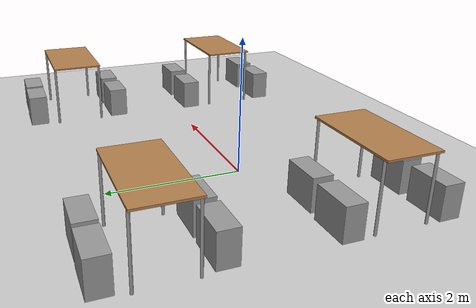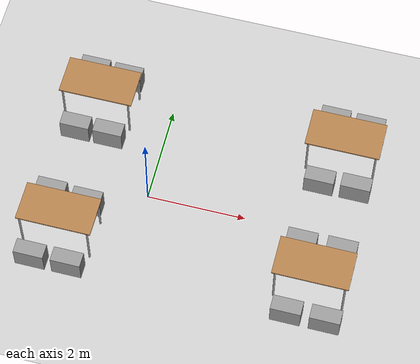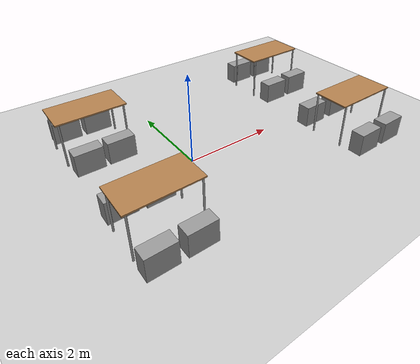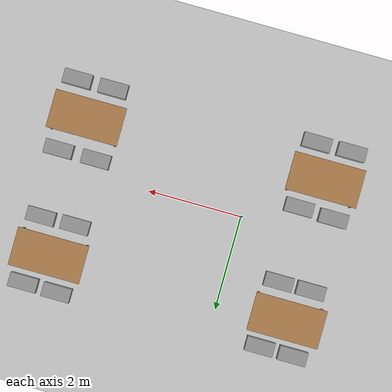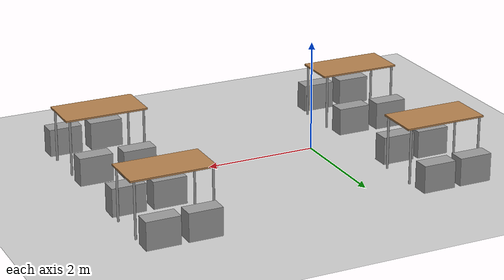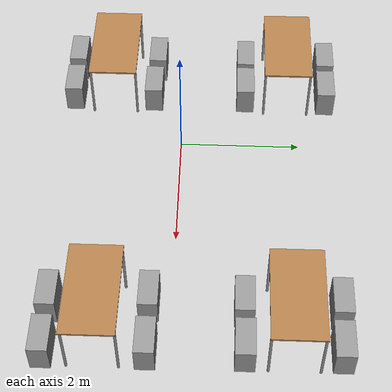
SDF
<sdf version="1.7">
 <world name="default">
  <model name="ground_plane">
   <static>1</static>
   <link name="link">
    <collision name="collision">
     <geometry><plane><normal>0 0 1</normal><size>100 100</size></plane></geometry>
     <surface><friction><ode><mu>100</mu><mu2>50</mu2></ode></friction></surface>
    </collision>
    <visual name="visual">
     <cast_shadows>0</cast_shadows>
     <geometry><plane><normal>0 0 1</normal><size>100 100</size></plane></geometry>
     <material>
      <script><uri>file://media/materials/scripts/gazebo.material</uri><name>Gazebo/Grey</name></script>
     </material>
    </visual>
   </link>
  </model>
  <model name="table">
   <static>1</static>
   <link name="link">
    <collision name="surface">
     <pose>0 0 1 0 -0 0</pose>
     <geometry><box><size>1.5 0.8 0.03</size></box></geometry>
     <surface><friction><ode><mu>0.6</mu><mu2>0.6</mu2></ode></friction></surface>
    </collision>
    <visual name="visual1">
     <pose>0 0 1 0 -0 0</pose>
     <geometry><box><size>1.5 0.8 0.03</size></box></geometry>
     <material>
      <script><uri>file://media/materials/scripts/gazebo.material</uri><name>Gazebo/Wood</name></script>
     </material>
    </visual>
    <collision name="front_left_leg">
     <pose>0.68 0.38 0.5 0 -0 0</pose>
     <geometry><cylinder><radius>0.02</radius><length>1</length></cylinder></geometry>
    </collision>
    <visual name="front_left_leg">
     <pose>0.68 0.38 0.5 0 -0 0</pose>
     <geometry><cylinder><radius>0.02</radius><length>1</length></cylinder></geometry>
     <material>
      <script><uri>file://media/materials/scripts/gazebo.material</uri><name>Gazebo/Grey</name></script>
     </material>
    </visual>
    <collision name="front_right_leg">
     <pose>0.68 -0.38 0.5 0 -0 0</pose>
     <geometry><cylinder><radius>0.02</radius><length>1</length></cylinder></geometry>
    </collision>
    <visual name="front_right_leg">
     <pose>0.68 -0.38 0.5 0 -0 0</pose>
     <geometry><cylinder><radius>0.02</radius><length>1</length></cylinder></geometry>
     <material>
      <script><uri>file://media/materials/scripts/gazebo.material</uri><name>Gazebo/Grey</name></script>
     </material>
    </visual>
    <collision name="back_right_leg">
     <pose>-0.68 -0.38 0.5 0 -0 0</pose>
     <geometry><cylinder><radius>0.02</radius><length>1</length></cylinder></geometry>
    </collision>
    <visual name="back_right_leg">
     <pose>-0.68 -0.38 0.5 0 -0 0</pose>
     <geometry><cylinder><radius>0.02</radius><length>1</length></cylinder></geometry>
     <material>
      <script><uri>file://media/materials/scripts/gazebo.material</uri><name>Gazebo/Grey</name></script>
     </material>
    </visual>
    <collision name="back_left_leg">
     <pose>-0.68 0.38 0.5 0 -0 0</pose>
     <geometry><cylinder><radius>0.02</radius><length>1</length></cylinder></geometry>
    </collision>
    <visual name="back_left_leg">
     <pose>-0.68 0.38 0.5 0 -0 0</pose>
     <geometry><cylinder><radius>0.02</radius><length>1</length></cylinder></geometry>
     <material>
      <script><uri>file://media/materials/scripts/gazebo.material</uri><name>Gazebo/Grey</name></script>
     </material>
    </visual>
   </link>
   <pose>-1.44943 1.78646 0 0 -0 0</pose>
  </model>
  <model name="table_0">
   <static>1</static>
   <link name="link">
    <collision name="surface">
     <pose>0 0 1 0 -0 0</pose>
     <geometry><box><size>1.5 0.8 0.03</size></box></geometry>
     <surface><friction><ode><mu>0.6</mu><mu2>0.6</mu2></ode></friction></surface>
    </collision>
    <visual name="visual1">
     <pose>0 0 1 0 -0 0</pose>
     <geometry><box><size>1.5 0.8 0.03</size></box></geometry>
     <material>
      <script><uri>file://media/materials/scripts/gazebo.material</uri><name>Gazebo/Wood</name></script>
     </material>
    </visual>
    <collision name="front_left_leg">
     <pose>0.68 0.38 0.5 0 -0 0</pose>
     <geometry><cylinder><radius>0.02</radius><length>1</length></cylinder></geometry>
    </collision>
    <visual name="front_left_leg">
     <pose>0.68 0.38 0.5 0 -0 0</pose>
     <geometry><cylinder><radius>0.02</radius><length>1</length></cylinder></geometry>
     <material>
      <script><uri>file://media/materials/scripts/gazebo.material</uri><name>Gazebo/Grey</name></script>
     </material>
    </visual>
    <collision name="front_right_leg">
     <pose>0.68 -0.38 0.5 0 -0 0</pose>
     <geometry><cylinder><radius>0.02</radius><length>1</length></cylinder></geometry>
    </collision>
    <visual name="front_right_leg">
     <pose>0.68 -0.38 0.5 0 -0 0</pose>
     <geometry><cylinder><radius>0.02</radius><length>1</length></cylinder></geometry>
     <material>
      <script><uri>file://media/materials/scripts/gazebo.material</uri><name>Gazebo/Grey</name></script>
     </material>
    </visual>
    <collision name="back_right_leg">
     <pose>-0.68 -0.38 0.5 0 -0 0</pose>
     <geometry><cylinder><radius>0.02</radius><length>1</length></cylinder></geometry>
    </collision>
    <visual name="back_right_leg">
     <pose>-0.68 -0.38 0.5 0 -0 0</pose>
     <geometry><cylinder><radius>0.02</radius><length>1</length></cylinder></geometry>
     <material>
      <script><uri>file://media/materials/scripts/gazebo.material</uri><name>Gazebo/Grey</name></script>
     </material>
    </visual>
    <collision name="back_left_leg">
     <pose>-0.68 0.38 0.5 0 -0 0</pose>
     <geometry><cylinder><radius>0.02</radius><length>1</length></cylinder></geometry>
    </collision>
    <visual name="back_left_leg">
     <pose>-0.68 0.38 0.5 0 -0 0</pose>
     <geometry><cylinder><radius>0.02</radius><length>1</length></cylinder></geometry>
     <material>
      <script><uri>file://media/materials/scripts/gazebo.material</uri><name>Gazebo/Grey</name></script>
     </material>
    </visual>
   </link>
   <pose>-1.43197 -1.18837 0 0 -0 0</pose>
  </model>
  <model name="table_3">
   <static>1</static>
   <link name="link">
    <collision name="surface">
     <pose>0 0 1 0 -0 0</pose>
     <geometry><box><size>1.5 0.8 0.03</size></box></geometry>
     <surface><friction><ode><mu>0.6</mu><mu2>0.6</mu2></ode></friction></surface>
    </collision>
    <visual name="visual1">
     <pose>0 0 1 0 -0 0</pose>
     <geometry><box><size>1.5 0.8 0.03</size></box></geometry>
     <material>
      <script><uri>file://media/materials/scripts/gazebo.material</uri><name>Gazebo/Wood</name></script>
     </material>
    </visual>
    <collision name="front_left_leg">
     <pose>0.68 0.38 0.5 0 -0 0</pose>
     <geometry><cylinder><radius>0.02</radius><length>1</length></cylinder></geometry>
    </collision>
    <visual name="front_left_leg">
     <pose>0.68 0.38 0.5 0 -0 0</pose>
     <geometry><cylinder><radius>0.02</radius><length>1</length></cylinder></geometry>
     <material>
      <script><uri>file://media/materials/scripts/gazebo.material</uri><name>Gazebo/Grey</name></script>
     </material>
    </visual>
    <collision name="front_right_leg">
     <pose>0.68 -0.38 0.5 0 -0 0</pose>
     <geometry><cylinder><radius>0.02</radius><length>1</length></cylinder></geometry>
    </collision>
    <visual name="front_right_leg">
     <pose>0.68 -0.38 0.5 0 -0 0</pose>
     <geometry><cylinder><radius>0.02</radius><length>1</length></cylinder></geometry>
     <material>
      <script><uri>file://media/materials/scripts/gazebo.material</uri><name>Gazebo/Grey</name></script>
     </material>
    </visual>
    <collision name="back_right_leg">
     <pose>-0.68 -0.38 0.5 0 -0 0</pose>
     <geometry><cylinder><radius>0.02</radius><length>1</length></cylinder></geometry>
    </collision>
    <visual name="back_right_leg">
     <pose>-0.68 -0.38 0.5 0 -0 0</pose>
     <geometry><cylinder><radius>0.02</radius><length>1</length></cylinder></geometry>
     <material>
      <script><uri>file://media/materials/scripts/gazebo.material</uri><name>Gazebo/Grey</name></script>
     </material>
    </visual>
    <collision name="back_left_leg">
     <pose>-0.68 0.38 0.5 0 -0 0</pose>
     <geometry><cylinder><radius>0.02</radius><length>1</length></cylinder></geometry>
    </collision>
    <visual name="back_left_leg">
     <pose>-0.68 0.38 0.5 0 -0 0</pose>
     <geometry><cylinder><radius>0.02</radius><length>1</length></cylinder></geometry>
     <material>
      <script><uri>file://media/materials/scripts/gazebo.material</uri><name>Gazebo/Grey</name></script>
     </material>
    </visual>
   </link>
   <pose>3.59201 1.81848 0 0 -0 0</pose>
  </model>
  <model name="table_4">
   <static>1</static>
   <link name="link">
    <collision name="surface">
     <pose>0 0 1 0 -0 0</pose>
     <geometry><box><size>1.5 0.8 0.03</size></box></geometry>
     <surface><friction><ode><mu>0.6</mu><mu2>0.6</mu2></ode></friction></surface>
    </collision>
    <visual name="visual1">
     <pose>0 0 1 0 -0 0</pose>
     <geometry><box><size>1.5 0.8 0.03</size></box></geometry>
     <material>
      <script><uri>file://media/materials/scripts/gazebo.material</uri><name>Gazebo/Wood</name></script>
     </material>
    </visual>
    <collision name="front_left_leg">
     <pose>0.68 0.38 0.5 0 -0 0</pose>
     <geometry><cylinder><radius>0.02</radius><length>1</length></cylinder></geometry>
    </collision>
    <visual name="front_left_leg">
     <pose>0.68 0.38 0.5 0 -0 0</pose>
     <geometry><cylinder><radius>0.02</radius><length>1</length></cylinder></geometry>
     <material>
      <script><uri>file://media/materials/scripts/gazebo.material</uri><name>Gazebo/Grey</name></script>
     </material>
    </visual>
    <collision name="front_right_leg">
     <pose>0.68 -0.38 0.5 0 -0 0</pose>
     <geometry><cylinder><radius>0.02</radius><length>1</length></cylinder></geometry>
    </collision>
    <visual name="front_right_leg">
     <pose>0.68 -0.38 0.5 0 -0 0</pose>
     <geometry><cylinder><radius>0.02</radius><length>1</length></cylinder></geometry>
     <material>
      <script><uri>file://media/materials/scripts/gazebo.material</uri><name>Gazebo/Grey</name></script>
     </material>
    </visual>
    <collision name="back_right_leg">
     <pose>-0.68 -0.38 0.5 0 -0 0</pose>
     <geometry><cylinder><radius>0.02</radius><length>1</length></cylinder></geometry>
    </collision>
    <visual name="back_right_leg">
     <pose>-0.68 -0.38 0.5 0 -0 0</pose>
     <geometry><cylinder><radius>0.02</radius><length>1</length></cylinder></geometry>
     <material>
      <script><uri>file://media/materials/scripts/gazebo.material</uri><name>Gazebo/Grey</name></script>
     </material>
    </visual>
    <collision name="back_left_leg">
     <pose>-0.68 0.38 0.5 0 -0 0</pose>
     <geometry><cylinder><radius>0.02</radius><length>1</length></cylinder></geometry>
    </collision>
    <visual name="back_left_leg">
     <pose>-0.68 0.38 0.5 0 -0 0</pose>
     <geometry><cylinder><radius>0.02</radius><length>1</length></cylinder></geometry>
     <material>
      <script><uri>file://media/materials/scripts/gazebo.material</uri><name>Gazebo/Grey</name></script>
     </material>
    </visual>
   </link>
   <pose>3.60676 -1.09378 0 0 -0 0</pose>
  </model>
  <model name="chair_clone_14">
   <link name="link">
    <inertial>
     <mass>1</mass>
     <inertia>
      <ixx>0.166667</ixx>
      <ixy>0</ixy>
      <ixz>0</ixz>
      <iyy>0.166667</iyy>
      <iyz>0</iyz>
      <izz>0.166667</izz>
     </inertia>
    </inertial>
    <visual name="visual">
     <geometry><box><size>0.6 0.3 0.5</size></box></geometry>
     <material>
      <script><name>Gazebo/Grey</name><uri>file://media/materials/scripts/gazebo.material</uri></script>
      <shader type="pixel"><normal_map>__default__</normal_map></shader>
      <ambient>0.3 0.3 0.3 1</ambient>
      <diffuse>0.7 0.7 0.7 1</diffuse>
      <specular>0.01 0.01 0.01 1</specular>
      <emissive>0.2 0.6 0 1</emissive>
     </material>
    </visual>
    <collision name="collision">
     <geometry><box><size>0.6 0.3 0.5</size></box></geometry>
     <surface>
      <friction>
       <ode><mu>1</mu><mu2>1</mu2><fdir1>0 0 0</fdir1><slip1>0</slip1><slip2>0</slip2></ode>
       <torsional>
        <coefficient>1</coefficient>
        <patch_radius>0</patch_radius>
        <surface_radius>0</surface_radius>
        <use_patch_radius>1</use_patch_radius>
        <ode><slip>0</slip></ode>
       </torsional>
      </friction>
      <bounce><restitution_coefficient>0</restitution_coefficient><threshold>1e+06</threshold></bounce>
      <contact>
       <collide_without_contact>0</collide_without_contact>
       <collide_without_contact_bitmask>1</collide_without_contact_bitmask>
       <collide_bitmask>1</collide_bitmask>
       <ode>
        <soft_cfm>0</soft_cfm>
        <soft_erp>0.2</soft_erp>
        <kp>1e+13</kp>
        <kd>1</kd>
        <max_vel>0.01</max_vel>
        <min_depth>0</min_depth>
       </ode>
       <bullet>
        <split_impulse>1</split_impulse>
        <split_impulse_penetration_threshold>-0.01</split_impulse_penetration_threshold>
        <soft_cfm>0</soft_cfm>
        <soft_erp>0.2</soft_erp>
        <kp>1e+13</kp>
        <kd>1</kd>
       </bullet>
      </contact>
     </surface>
    </collision>
   </link>
   <static>0</static>
   <pose>4.03397 -1.84002 0.244748 0 -0 0</pose>
  </model>
  <model name="chair_clone_15">
   <link name="link">
    <inertial>
     <mass>1</mass>
     <inertia>
      <ixx>0.166667</ixx>
      <ixy>0</ixy>
      <ixz>0</ixz>
      <iyy>0.166667</iyy>
      <iyz>0</iyz>
      <izz>0.166667</izz>
     </inertia>
    </inertial>
    <visual name="visual">
     <geometry><box><size>0.6 0.3 0.5</size></box></geometry>
     <material>
      <script><name>Gazebo/Grey</name><uri>file://media/materials/scripts/gazebo.material</uri></script>
      <shader type="pixel"><normal_map>__default__</normal_map></shader>
      <ambient>0.3 0.3 0.3 1</ambient>
      <diffuse>0.7 0.7 0.7 1</diffuse>
      <specular>0.01 0.01 0.01 1</specular>
      <emissive>0.2 0.6 0 1</emissive>
     </material>
    </visual>
    <collision name="collision">
     <geometry><box><size>0.6 0.3 0.5</size></box></geometry>
     <surface>
      <friction>
       <ode><mu>1</mu><mu2>1</mu2><fdir1>0 0 0</fdir1><slip1>0</slip1><slip2>0</slip2></ode>
       <torsional>
        <coefficient>1</coefficient>
        <patch_radius>0</patch_radius>
        <surface_radius>0</surface_radius>
        <use_patch_radius>1</use_patch_radius>
        <ode><slip>0</slip></ode>
       </torsional>
      </friction>
      <bounce><restitution_coefficient>0</restitution_coefficient><threshold>1e+06</threshold></bounce>
      <contact>
       <collide_without_contact>0</collide_without_contact>
       <collide_without_contact_bitmask>1</collide_without_contact_bitmask>
       <collide_bitmask>1</collide_bitmask>
       <ode>
        <soft_cfm>0</soft_cfm>
        <soft_erp>0.2</soft_erp>
        <kp>1e+13</kp>
        <kd>1</kd>
        <max_vel>0.01</max_vel>
        <min_depth>0</min_depth>
       </ode>
       <bullet>
        <split_impulse>1</split_impulse>
        <split_impulse_penetration_threshold>-0.01</split_impulse_penetration_threshold>
        <soft_cfm>0</soft_cfm>
        <soft_erp>0.2</soft_erp>
        <kp>1e+13</kp>
        <kd>1</kd>
       </bullet>
      </contact>
     </surface>
    </collision>
   </link>
   <static>0</static>
   <pose>3.26792 -1.83875 0.243552 0 -0 0</pose>
  </model>
  <model name="chair_clone_16">
   <link name="link">
    <inertial>
     <mass>1</mass>
     <inertia>
      <ixx>0.166667</ixx>
      <ixy>0</ixy>
      <ixz>0</ixz>
      <iyy>0.166667</iyy>
      <iyz>0</iyz>
      <izz>0.166667</izz>
     </inertia>
    </inertial>
    <visual name="visual">
     <geometry><box><size>0.6 0.3 0.5</size></box></geometry>
     <material>
      <script><name>Gazebo/Grey</name><uri>file://media/materials/scripts/gazebo.material</uri></script>
      <shader type="pixel"><normal_map>__default__</normal_map></shader>
      <ambient>0.3 0.3 0.3 1</ambient>
      <diffuse>0.7 0.7 0.7 1</diffuse>
      <specular>0.01 0.01 0.01 1</specular>
      <emissive>0.2 0.6 0 1</emissive>
     </material>
    </visual>
    <collision name="collision">
     <geometry><box><size>0.6 0.3 0.5</size></box></geometry>
     <surface>
      <friction>
       <ode><mu>1</mu><mu2>1</mu2><fdir1>0 0 0</fdir1><slip1>0</slip1><slip2>0</slip2></ode>
       <torsional>
        <coefficient>1</coefficient>
        <patch_radius>0</patch_radius>
        <surface_radius>0</surface_radius>
        <use_patch_radius>1</use_patch_radius>
        <ode><slip>0</slip></ode>
       </torsional>
      </friction>
      <bounce><restitution_coefficient>0</restitution_coefficient><threshold>1e+06</threshold></bounce>
      <contact>
       <collide_without_contact>0</collide_without_contact>
       <collide_without_contact_bitmask>1</collide_without_contact_bitmask>
       <collide_bitmask>1</collide_bitmask>
       <ode>
        <soft_cfm>0</soft_cfm>
        <soft_erp>0.2</soft_erp>
        <kp>1e+13</kp>
        <kd>1</kd>
        <max_vel>0.01</max_vel>
        <min_depth>0</min_depth>
       </ode>
       <bullet>
        <split_impulse>1</split_impulse>
        <split_impulse_penetration_threshold>-0.01</split_impulse_penetration_threshold>
        <soft_cfm>0</soft_cfm>
        <soft_erp>0.2</soft_erp>
        <kp>1e+13</kp>
        <kd>1</kd>
       </bullet>
      </contact>
     </surface>
    </collision>
   </link>
   <static>0</static>
   <pose>4.01856 -0.337506 0.246213 0 -0 0</pose>
  </model>
  <model name="chair_clone_17">
   <link name="link">
    <inertial>
     <mass>1</mass>
     <inertia>
      <ixx>0.166667</ixx>
      <ixy>0</ixy>
      <ixz>0</ixz>
      <iyy>0.166667</iyy>
      <iyz>0</iyz>
      <izz>0.166667</izz>
     </inertia>
    </inertial>
    <visual name="visual">
     <geometry><box><size>0.6 0.3 0.5</size></box></geometry>
     <material>
      <script><name>Gazebo/Grey</name><uri>file://media/materials/scripts/gazebo.material</uri></script>
      <shader type="pixel"><normal_map>__default__</normal_map></shader>
      <ambient>0.3 0.3 0.3 1</ambient>
      <diffuse>0.7 0.7 0.7 1</diffuse>
      <specular>0.01 0.01 0.01 1</specular>
      <emissive>0.2 0.6 0 1</emissive>
     </material>
    </visual>
    <collision name="collision">
     <geometry><box><size>0.6 0.3 0.5</size></box></geometry>
     <surface>
      <friction>
       <ode><mu>1</mu><mu2>1</mu2><fdir1>0 0 0</fdir1><slip1>0</slip1><slip2>0</slip2></ode>
       <torsional>
        <coefficient>1</coefficient>
        <patch_radius>0</patch_radius>
        <surface_radius>0</surface_radius>
        <use_patch_radius>1</use_patch_radius>
        <ode><slip>0</slip></ode>
       </torsional>
      </friction>
      <bounce><restitution_coefficient>0</restitution_coefficient><threshold>1e+06</threshold></bounce>
      <contact>
       <collide_without_contact>0</collide_without_contact>
       <collide_without_contact_bitmask>1</collide_without_contact_bitmask>
       <collide_bitmask>1</collide_bitmask>
       <ode>
        <soft_cfm>0</soft_cfm>
        <soft_erp>0.2</soft_erp>
        <kp>1e+13</kp>
        <kd>1</kd>
        <max_vel>0.01</max_vel>
        <min_depth>0</min_depth>
       </ode>
       <bullet>
        <split_impulse>1</split_impulse>
        <split_impulse_penetration_threshold>-0.01</split_impulse_penetration_threshold>
        <soft_cfm>0</soft_cfm>
        <soft_erp>0.2</soft_erp>
        <kp>1e+13</kp>
        <kd>1</kd>
       </bullet>
      </contact>
     </surface>
    </collision>
   </link>
   <static>0</static>
   <pose>3.22057 -0.336977 0.230774 0 -0 0</pose>
  </model>
  <model name="chair_clone_18">
   <link name="link">
    <inertial>
     <mass>1</mass>
     <inertia>
      <ixx>0.166667</ixx>
      <ixy>0</ixy>
      <ixz>0</ixz>
      <iyy>0.166667</iyy>
      <iyz>0</iyz>
      <izz>0.166667</izz>
     </inertia>
    </inertial>
    <visual name="visual">
     <geometry><box><size>0.6 0.3 0.5</size></box></geometry>
     <material>
      <script><name>Gazebo/Grey</name><uri>file://media/materials/scripts/gazebo.material</uri></script>
      <shader type="pixel"><normal_map>__default__</normal_map></shader>
      <ambient>0.3 0.3 0.3 1</ambient>
      <diffuse>0.7 0.7 0.7 1</diffuse>
      <specular>0.01 0.01 0.01 1</specular>
      <emissive>0.2 0.6 0 1</emissive>
     </material>
    </visual>
    <collision name="collision">
     <geometry><box><size>0.6 0.3 0.5</size></box></geometry>
     <surface>
      <friction>
       <ode><mu>1</mu><mu2>1</mu2><fdir1>0 0 0</fdir1><slip1>0</slip1><slip2>0</slip2></ode>
       <torsional>
        <coefficient>1</coefficient>
        <patch_radius>0</patch_radius>
        <surface_radius>0</surface_radius>
        <use_patch_radius>1</use_patch_radius>
        <ode><slip>0</slip></ode>
       </torsional>
      </friction>
      <bounce><restitution_coefficient>0</restitution_coefficient><threshold>1e+06</threshold></bounce>
      <contact>
       <collide_without_contact>0</collide_without_contact>
       <collide_without_contact_bitmask>1</collide_without_contact_bitmask>
       <collide_bitmask>1</collide_bitmask>
       <ode>
        <soft_cfm>0</soft_cfm>
        <soft_erp>0.2</soft_erp>
        <kp>1e+13</kp>
        <kd>1</kd>
        <max_vel>0.01</max_vel>
        <min_depth>0</min_depth>
       </ode>
       <bullet>
        <split_impulse>1</split_impulse>
        <split_impulse_penetration_threshold>-0.01</split_impulse_penetration_threshold>
        <soft_cfm>0</soft_cfm>
        <soft_erp>0.2</soft_erp>
        <kp>1e+13</kp>
        <kd>1</kd>
       </bullet>
      </contact>
     </surface>
    </collision>
   </link>
   <static>0</static>
   <pose>-1.08844 -1.90508 0.242543 0 -0 0</pose>
  </model>
  <model name="chair_clone_19">
   <link name="link">
    <inertial>
     <mass>1</mass>
     <inertia>
      <ixx>0.166667</ixx>
      <ixy>0</ixy>
      <ixz>0</ixz>
      <iyy>0.166667</iyy>
      <iyz>0</iyz>
      <izz>0.166667</izz>
     </inertia>
    </inertial>
    <visual name="visual">
     <geometry><box><size>0.6 0.3 0.5</size></box></geometry>
     <material>
      <script><name>Gazebo/Grey</name><uri>file://media/materials/scripts/gazebo.material</uri></script>
      <shader type="pixel"><normal_map>__default__</normal_map></shader>
      <ambient>0.3 0.3 0.3 1</ambient>
      <diffuse>0.7 0.7 0.7 1</diffuse>
      <specular>0.01 0.01 0.01 1</specular>
      <emissive>0.2 0.6 0 1</emissive>
     </material>
    </visual>
    <collision name="collision">
     <geometry><box><size>0.6 0.3 0.5</size></box></geometry>
     <surface>
      <friction>
       <ode><mu>1</mu><mu2>1</mu2><fdir1>0 0 0</fdir1><slip1>0</slip1><slip2>0</slip2></ode>
       <torsional>
        <coefficient>1</coefficient>
        <patch_radius>0</patch_radius>
        <surface_radius>0</surface_radius>
        <use_patch_radius>1</use_patch_radius>
        <ode><slip>0</slip></ode>
       </torsional>
      </friction>
      <bounce><restitution_coefficient>0</restitution_coefficient><threshold>1e+06</threshold></bounce>
      <contact>
       <collide_without_contact>0</collide_without_contact>
       <collide_without_contact_bitmask>1</collide_without_contact_bitmask>
       <collide_bitmask>1</collide_bitmask>
       <ode>
        <soft_cfm>0</soft_cfm>
        <soft_erp>0.2</soft_erp>
        <kp>1e+13</kp>
        <kd>1</kd>
        <max_vel>0.01</max_vel>
        <min_depth>0</min_depth>
       </ode>
       <bullet>
        <split_impulse>1</split_impulse>
        <split_impulse_penetration_threshold>-0.01</split_impulse_penetration_threshold>
        <soft_cfm>0</soft_cfm>
        <soft_erp>0.2</soft_erp>
        <kp>1e+13</kp>
        <kd>1</kd>
       </bullet>
      </contact>
     </surface>
    </collision>
   </link>
   <static>0</static>
   <pose>-1.83556 -1.90878 0.242242 0 -0 0</pose>
  </model>
  <model name="chair_clone_20">
   <link name="link">
    <inertial>
     <mass>1</mass>
     <inertia>
      <ixx>0.166667</ixx>
      <ixy>0</ixy>
      <ixz>0</ixz>
      <iyy>0.166667</iyy>
      <iyz>0</iyz>
      <izz>0.166667</izz>
     </inertia>
    </inertial>
    <visual name="visual">
     <geometry><box><size>0.6 0.3 0.5</size></box></geometry>
     <material>
      <script><name>Gazebo/Grey</name><uri>file://media/materials/scripts/gazebo.material</uri></script>
      <shader type="pixel"><normal_map>__default__</normal_map></shader>
      <ambient>0.3 0.3 0.3 1</ambient>
      <diffuse>0.7 0.7 0.7 1</diffuse>
      <specular>0.01 0.01 0.01 1</specular>
      <emissive>0.2 0.6 0 1</emissive>
     </material>
    </visual>
    <collision name="collision">
     <geometry><box><size>0.6 0.3 0.5</size></box></geometry>
     <surface>
      <friction>
       <ode><mu>1</mu><mu2>1</mu2><fdir1>0 0 0</fdir1><slip1>0</slip1><slip2>0</slip2></ode>
       <torsional>
        <coefficient>1</coefficient>
        <patch_radius>0</patch_radius>
        <surface_radius>0</surface_radius>
        <use_patch_radius>1</use_patch_radius>
        <ode><slip>0</slip></ode>
       </torsional>
      </friction>
      <bounce><restitution_coefficient>0</restitution_coefficient><threshold>1e+06</threshold></bounce>
      <contact>
       <collide_without_contact>0</collide_without_contact>
       <collide_without_contact_bitmask>1</collide_without_contact_bitmask>
       <collide_bitmask>1</collide_bitmask>
       <ode>
        <soft_cfm>0</soft_cfm>
        <soft_erp>0.2</soft_erp>
        <kp>1e+13</kp>
        <kd>1</kd>
        <max_vel>0.01</max_vel>
        <min_depth>0</min_depth>
       </ode>
       <bullet>
        <split_impulse>1</split_impulse>
        <split_impulse_penetration_threshold>-0.01</split_impulse_penetration_threshold>
        <soft_cfm>0</soft_cfm>
        <soft_erp>0.2</soft_erp>
        <kp>1e+13</kp>
        <kd>1</kd>
       </bullet>
      </contact>
     </surface>
    </collision>
   </link>
   <static>0</static>
   <pose>-1.09452 -0.516383 0.239199 0 -0 0</pose>
  </model>
  <model name="chair_clone_21">
   <link name="link">
    <inertial>
     <mass>1</mass>
     <inertia>
      <ixx>0.166667</ixx>
      <ixy>0</ixy>
      <ixz>0</ixz>
      <iyy>0.166667</iyy>
      <iyz>0</iyz>
      <izz>0.166667</izz>
     </inertia>
    </inertial>
    <visual name="visual">
     <geometry><box><size>0.6 0.3 0.5</size></box></geometry>
     <material>
      <script><name>Gazebo/Grey</name><uri>file://media/materials/scripts/gazebo.material</uri></script>
      <shader type="pixel"><normal_map>__default__</normal_map></shader>
      <ambient>0.3 0.3 0.3 1</ambient>
      <diffuse>0.7 0.7 0.7 1</diffuse>
      <specular>0.01 0.01 0.01 1</specular>
      <emissive>0.2 0.6 0 1</emissive>
     </material>
    </visual>
    <collision name="collision">
     <geometry><box><size>0.6 0.3 0.5</size></box></geometry>
     <surface>
      <friction>
       <ode><mu>1</mu><mu2>1</mu2><fdir1>0 0 0</fdir1><slip1>0</slip1><slip2>0</slip2></ode>
       <torsional>
        <coefficient>1</coefficient>
        <patch_radius>0</patch_radius>
        <surface_radius>0</surface_radius>
        <use_patch_radius>1</use_patch_radius>
        <ode><slip>0</slip></ode>
       </torsional>
      </friction>
      <bounce><restitution_coefficient>0</restitution_coefficient><threshold>1e+06</threshold></bounce>
      <contact>
       <collide_without_contact>0</collide_without_contact>
       <collide_without_contact_bitmask>1</collide_without_contact_bitmask>
       <collide_bitmask>1</collide_bitmask>
       <ode>
        <soft_cfm>0</soft_cfm>
        <soft_erp>0.2</soft_erp>
        <kp>1e+13</kp>
        <kd>1</kd>
        <max_vel>0.01</max_vel>
        <min_depth>0</min_depth>
       </ode>
       <bullet>
        <split_impulse>1</split_impulse>
        <split_impulse_penetration_threshold>-0.01</split_impulse_penetration_threshold>
        <soft_cfm>0</soft_cfm>
        <soft_erp>0.2</soft_erp>
        <kp>1e+13</kp>
        <kd>1</kd>
       </bullet>
      </contact>
     </surface>
    </collision>
   </link>
   <static>0</static>
   <pose>-1.83815 -0.482425 0.246423 0 -0 0</pose>
  </model>
  <model name="chair_clone_22">
   <link name="link">
    <inertial>
     <mass>1</mass>
     <inertia>
      <ixx>0.166667</ixx>
      <ixy>0</ixy>
      <ixz>0</ixz>
      <iyy>0.166667</iyy>
      <iyz>0</iyz>
      <izz>0.166667</izz>
     </inertia>
    </inertial>
    <visual name="visual">
     <geometry><box><size>0.6 0.3 0.5</size></box></geometry>
     <material>
      <script><name>Gazebo/Grey</name><uri>file://media/materials/scripts/gazebo.material</uri></script>
      <shader type="pixel"><normal_map>__default__</normal_map></shader>
      <ambient>0.3 0.3 0.3 1</ambient>
      <diffuse>0.7 0.7 0.7 1</diffuse>
      <specular>0.01 0.01 0.01 1</specular>
      <emissive>0.2 0.6 0 1</emissive>
     </material>
    </visual>
    <collision name="collision">
     <geometry><box><size>0.6 0.3 0.5</size></box></geometry>
     <surface>
      <friction>
       <ode><mu>1</mu><mu2>1</mu2><fdir1>0 0 0</fdir1><slip1>0</slip1><slip2>0</slip2></ode>
       <torsional>
        <coefficient>1</coefficient>
        <patch_radius>0</patch_radius>
        <surface_radius>0</surface_radius>
        <use_patch_radius>1</use_patch_radius>
        <ode><slip>0</slip></ode>
       </torsional>
      </friction>
      <bounce><restitution_coefficient>0</restitution_coefficient><threshold>1e+06</threshold></bounce>
      <contact>
       <collide_without_contact>0</collide_without_contact>
       <collide_without_contact_bitmask>1</collide_without_contact_bitmask>
       <collide_bitmask>1</collide_bitmask>
       <ode>
        <soft_cfm>0</soft_cfm>
        <soft_erp>0.2</soft_erp>
        <kp>1e+13</kp>
        <kd>1</kd>
        <max_vel>0.01</max_vel>
        <min_depth>0</min_depth>
       </ode>
       <bullet>
        <split_impulse>1</split_impulse>
        <split_impulse_penetration_threshold>-0.01</split_impulse_penetration_threshold>
        <soft_cfm>0</soft_cfm>
        <soft_erp>0.2</soft_erp>
        <kp>1e+13</kp>
        <kd>1</kd>
       </bullet>
      </contact>
     </surface>
    </collision>
   </link>
   <static>0</static>
   <pose>3.99871 1.10093 0.247885 0 -0 0</pose>
  </model>
  <model name="chair_clone_23">
   <link name="link">
    <inertial>
     <mass>1</mass>
     <inertia>
      <ixx>0.166667</ixx>
      <ixy>0</ixy>
      <ixz>0</ixz>
      <iyy>0.166667</iyy>
      <iyz>0</iyz>
      <izz>0.166667</izz>
     </inertia>
    </inertial>
    <visual name="visual">
     <geometry><box><size>0.6 0.3 0.5</size></box></geometry>
     <material>
      <script><name>Gazebo/Grey</name><uri>file://media/materials/scripts/gazebo.material</uri></script>
      <shader type="pixel"><normal_map>__default__</normal_map></shader>
      <ambient>0.3 0.3 0.3 1</ambient>
      <diffuse>0.7 0.7 0.7 1</diffuse>
      <specular>0.01 0.01 0.01 1</specular>
      <emissive>0.2 0.6 0 1</emissive>
     </material>
    </visual>
    <collision name="collision">
     <geometry><box><size>0.6 0.3 0.5</size></box></geometry>
     <surface>
      <friction>
       <ode><mu>1</mu><mu2>1</mu2><fdir1>0 0 0</fdir1><slip1>0</slip1><slip2>0</slip2></ode>
       <torsional>
        <coefficient>1</coefficient>
        <patch_radius>0</patch_radius>
        <surface_radius>0</surface_radius>
        <use_patch_radius>1</use_patch_radius>
        <ode><slip>0</slip></ode>
       </torsional>
      </friction>
      <bounce><restitution_coefficient>0</restitution_coefficient><threshold>1e+06</threshold></bounce>
      <contact>
       <collide_without_contact>0</collide_without_contact>
       <collide_without_contact_bitmask>1</collide_without_contact_bitmask>
       <collide_bitmask>1</collide_bitmask>
       <ode>
        <soft_cfm>0</soft_cfm>
        <soft_erp>0.2</soft_erp>
        <kp>1e+13</kp>
        <kd>1</kd>
        <max_vel>0.01</max_vel>
        <min_depth>0</min_depth>
       </ode>
       <bullet>
        <split_impulse>1</split_impulse>
        <split_impulse_penetration_threshold>-0.01</split_impulse_penetration_threshold>
        <soft_cfm>0</soft_cfm>
        <soft_erp>0.2</soft_erp>
        <kp>1e+13</kp>
        <kd>1</kd>
       </bullet>
      </contact>
     </surface>
    </collision>
   </link>
   <static>0</static>
   <pose>3.26438 1.09176 0.230864 0 -0 0</pose>
  </model>
  <model name="chair_clone_24">
   <link name="link">
    <inertial>
     <mass>1</mass>
     <inertia>
      <ixx>0.166667</ixx>
      <ixy>0</ixy>
      <ixz>0</ixz>
      <iyy>0.166667</iyy>
      <iyz>0</iyz>
      <izz>0.166667</izz>
     </inertia>
    </inertial>
    <visual name="visual">
     <geometry><box><size>0.6 0.3 0.5</size></box></geometry>
     <material>
      <script><name>Gazebo/Grey</name><uri>file://media/materials/scripts/gazebo.material</uri></script>
      <shader type="pixel"><normal_map>__default__</normal_map></shader>
      <ambient>0.3 0.3 0.3 1</ambient>
      <diffuse>0.7 0.7 0.7 1</diffuse>
      <specular>0.01 0.01 0.01 1</specular>
      <emissive>0.2 0.6 0 1</emissive>
     </material>
    </visual>
    <collision name="collision">
     <geometry><box><size>0.6 0.3 0.5</size></box></geometry>
     <surface>
      <friction>
       <ode><mu>1</mu><mu2>1</mu2><fdir1>0 0 0</fdir1><slip1>0</slip1><slip2>0</slip2></ode>
       <torsional>
        <coefficient>1</coefficient>
        <patch_radius>0</patch_radius>
        <surface_radius>0</surface_radius>
        <use_patch_radius>1</use_patch_radius>
        <ode><slip>0</slip></ode>
       </torsional>
      </friction>
      <bounce><restitution_coefficient>0</restitution_coefficient><threshold>1e+06</threshold></bounce>
      <contact>
       <collide_without_contact>0</collide_without_contact>
       <collide_without_contact_bitmask>1</collide_without_contact_bitmask>
       <collide_bitmask>1</collide_bitmask>
       <ode>
        <soft_cfm>0</soft_cfm>
        <soft_erp>0.2</soft_erp>
        <kp>1e+13</kp>
        <kd>1</kd>
        <max_vel>0.01</max_vel>
        <min_depth>0</min_depth>
       </ode>
       <bullet>
        <split_impulse>1</split_impulse>
        <split_impulse_penetration_threshold>-0.01</split_impulse_penetration_threshold>
        <soft_cfm>0</soft_cfm>
        <soft_erp>0.2</soft_erp>
        <kp>1e+13</kp>
        <kd>1</kd>
       </bullet>
      </contact>
     </surface>
    </collision>
   </link>
   <static>0</static>
   <pose>3.98228 2.51931 0.235986 0 -0 0</pose>
  </model>
  <model name="chair_clone_25">
   <link name="link">
    <inertial>
     <mass>1</mass>
     <inertia>
      <ixx>0.166667</ixx>
      <ixy>0</ixy>
      <ixz>0</ixz>
      <iyy>0.166667</iyy>
      <iyz>0</iyz>
      <izz>0.166667</izz>
     </inertia>
    </inertial>
    <visual name="visual">
     <geometry><box><size>0.6 0.3 0.5</size></box></geometry>
     <material>
      <script><name>Gazebo/Grey</name><uri>file://media/materials/scripts/gazebo.material</uri></script>
      <shader type="pixel"><normal_map>__default__</normal_map></shader>
      <ambient>0.3 0.3 0.3 1</ambient>
      <diffuse>0.7 0.7 0.7 1</diffuse>
      <specular>0.01 0.01 0.01 1</specular>
      <emissive>0.2 0.6 0 1</emissive>
     </material>
    </visual>
    <collision name="collision">
     <geometry><box><size>0.6 0.3 0.5</size></box></geometry>
     <surface>
      <friction>
       <ode><mu>1</mu><mu2>1</mu2><fdir1>0 0 0</fdir1><slip1>0</slip1><slip2>0</slip2></ode>
       <torsional>
        <coefficient>1</coefficient>
        <patch_radius>0</patch_radius>
        <surface_radius>0</surface_radius>
        <use_patch_radius>1</use_patch_radius>
        <ode><slip>0</slip></ode>
       </torsional>
      </friction>
      <bounce><restitution_coefficient>0</restitution_coefficient><threshold>1e+06</threshold></bounce>
      <contact>
       <collide_without_contact>0</collide_without_contact>
       <collide_without_contact_bitmask>1</collide_without_contact_bitmask>
       <collide_bitmask>1</collide_bitmask>
       <ode>
        <soft_cfm>0</soft_cfm>
        <soft_erp>0.2</soft_erp>
        <kp>1e+13</kp>
        <kd>1</kd>
        <max_vel>0.01</max_vel>
        <min_depth>0</min_depth>
       </ode>
       <bullet>
        <split_impulse>1</split_impulse>
        <split_impulse_penetration_threshold>-0.01</split_impulse_penetration_threshold>
        <soft_cfm>0</soft_cfm>
        <soft_erp>0.2</soft_erp>
        <kp>1e+13</kp>
        <kd>1</kd>
       </bullet>
      </contact>
     </surface>
    </collision>
   </link>
   <static>0</static>
   <pose>3.26273 2.53263 0.248443 0 -0 0</pose>
  </model>
  <model name="chair_clone_26">
   <link name="link">
    <inertial>
     <mass>1</mass>
     <inertia>
      <ixx>0.166667</ixx>
      <ixy>0</ixy>
      <ixz>0</ixz>
      <iyy>0.166667</iyy>
      <iyz>0</iyz>
      <izz>0.166667</izz>
     </inertia>
    </inertial>
    <visual name="visual">
     <geometry><box><size>0.6 0.3 0.5</size></box></geometry>
     <material>
      <script><name>Gazebo/Grey</name><uri>file://media/materials/scripts/gazebo.material</uri></script>
      <shader type="pixel"><normal_map>__default__</normal_map></shader>
      <ambient>0.3 0.3 0.3 1</ambient>
      <diffuse>0.7 0.7 0.7 1</diffuse>
      <specular>0.01 0.01 0.01 1</specular>
      <emissive>0.2 0.6 0 1</emissive>
     </material>
    </visual>
    <collision name="collision">
     <geometry><box><size>0.6 0.3 0.5</size></box></geometry>
     <surface>
      <friction>
       <ode><mu>1</mu><mu2>1</mu2><fdir1>0 0 0</fdir1><slip1>0</slip1><slip2>0</slip2></ode>
       <torsional>
        <coefficient>1</coefficient>
        <patch_radius>0</patch_radius>
        <surface_radius>0</surface_radius>
        <use_patch_radius>1</use_patch_radius>
        <ode><slip>0</slip></ode>
       </torsional>
      </friction>
      <bounce><restitution_coefficient>0</restitution_coefficient><threshold>1e+06</threshold></bounce>
      <contact>
       <collide_without_contact>0</collide_without_contact>
       <collide_without_contact_bitmask>1</collide_without_contact_bitmask>
       <collide_bitmask>1</collide_bitmask>
       <ode>
        <soft_cfm>0</soft_cfm>
        <soft_erp>0.2</soft_erp>
        <kp>1e+13</kp>
        <kd>1</kd>
        <max_vel>0.01</max_vel>
        <min_depth>0</min_depth>
       </ode>
       <bullet>
        <split_impulse>1</split_impulse>
        <split_impulse_penetration_threshold>-0.01</split_impulse_penetration_threshold>
        <soft_cfm>0</soft_cfm>
        <soft_erp>0.2</soft_erp>
        <kp>1e+13</kp>
        <kd>1</kd>
       </bullet>
      </contact>
     </surface>
    </collision>
   </link>
   <static>0</static>
   <pose>-1.1031 1.08266 0.247911 0 -0 0</pose>
  </model>
  <model name="chair_clone_27">
   <link name="link">
    <inertial>
     <mass>1</mass>
     <inertia>
      <ixx>0.166667</ixx>
      <ixy>0</ixy>
      <ixz>0</ixz>
      <iyy>0.166667</iyy>
      <iyz>0</iyz>
      <izz>0.166667</izz>
     </inertia>
    </inertial>
    <visual name="visual">
     <geometry><box><size>0.6 0.3 0.5</size></box></geometry>
     <material>
      <script><name>Gazebo/Grey</name><uri>file://media/materials/scripts/gazebo.material</uri></script>
      <shader type="pixel"><normal_map>__default__</normal_map></shader>
      <ambient>0.3 0.3 0.3 1</ambient>
      <diffuse>0.7 0.7 0.7 1</diffuse>
      <specular>0.01 0.01 0.01 1</specular>
      <emissive>0.2 0.6 0 1</emissive>
     </material>
    </visual>
    <collision name="collision">
     <geometry><box><size>0.6 0.3 0.5</size></box></geometry>
     <surface>
      <friction>
       <ode><mu>1</mu><mu2>1</mu2><fdir1>0 0 0</fdir1><slip1>0</slip1><slip2>0</slip2></ode>
       <torsional>
        <coefficient>1</coefficient>
        <patch_radius>0</patch_radius>
        <surface_radius>0</surface_radius>
        <use_patch_radius>1</use_patch_radius>
        <ode><slip>0</slip></ode>
       </torsional>
      </friction>
      <bounce><restitution_coefficient>0</restitution_coefficient><threshold>1e+06</threshold></bounce>
      <contact>
       <collide_without_contact>0</collide_without_contact>
       <collide_without_contact_bitmask>1</collide_without_contact_bitmask>
       <collide_bitmask>1</collide_bitmask>
       <ode>
        <soft_cfm>0</soft_cfm>
        <soft_erp>0.2</soft_erp>
        <kp>1e+13</kp>
        <kd>1</kd>
        <max_vel>0.01</max_vel>
        <min_depth>0</min_depth>
       </ode>
       <bullet>
        <split_impulse>1</split_impulse>
        <split_impulse_penetration_threshold>-0.01</split_impulse_penetration_threshold>
        <soft_cfm>0</soft_cfm>
        <soft_erp>0.2</soft_erp>
        <kp>1e+13</kp>
        <kd>1</kd>
       </bullet>
      </contact>
     </surface>
    </collision>
   </link>
   <static>0</static>
   <pose>-1.79246 1.08319 0.245224 0 -0 0</pose>
  </model>
  <model name="chair_clone_28">
   <link name="link">
    <inertial>
     <mass>1</mass>
     <inertia>
      <ixx>0.166667</ixx>
      <ixy>0</ixy>
      <ixz>0</ixz>
      <iyy>0.166667</iyy>
      <iyz>0</iyz>
      <izz>0.166667</izz>
     </inertia>
    </inertial>
    <visual name="visual">
     <geometry><box><size>0.6 0.3 0.5</size></box></geometry>
     <material>
      <script><name>Gazebo/Grey</name><uri>file://media/materials/scripts/gazebo.material</uri></script>
      <shader type="pixel"><normal_map>__default__</normal_map></shader>
      <ambient>0.3 0.3 0.3 1</ambient>
      <diffuse>0.7 0.7 0.7 1</diffuse>
      <specular>0.01 0.01 0.01 1</specular>
      <emissive>0.2 0.6 0 1</emissive>
     </material>
    </visual>
    <collision name="collision">
     <geometry><box><size>0.6 0.3 0.5</size></box></geometry>
     <surface>
      <friction>
       <ode><mu>1</mu><mu2>1</mu2><fdir1>0 0 0</fdir1><slip1>0</slip1><slip2>0</slip2></ode>
       <torsional>
        <coefficient>1</coefficient>
        <patch_radius>0</patch_radius>
        <surface_radius>0</surface_radius>
        <use_patch_radius>1</use_patch_radius>
        <ode><slip>0</slip></ode>
       </torsional>
      </friction>
      <bounce><restitution_coefficient>0</restitution_coefficient><threshold>1e+06</threshold></bounce>
      <contact>
       <collide_without_contact>0</collide_without_contact>
       <collide_without_contact_bitmask>1</collide_without_contact_bitmask>
       <collide_bitmask>1</collide_bitmask>
       <ode>
        <soft_cfm>0</soft_cfm>
        <soft_erp>0.2</soft_erp>
        <kp>1e+13</kp>
        <kd>1</kd>
        <max_vel>0.01</max_vel>
        <min_depth>0</min_depth>
       </ode>
       <bullet>
        <split_impulse>1</split_impulse>
        <split_impulse_penetration_threshold>-0.01</split_impulse_penetration_threshold>
        <soft_cfm>0</soft_cfm>
        <soft_erp>0.2</soft_erp>
        <kp>1e+13</kp>
        <kd>1</kd>
       </bullet>
      </contact>
     </surface>
    </collision>
   </link>
   <static>0</static>
   <pose>-1.0874 2.47667 0.231004 0 -0 0</pose>
  </model>
  <model name="chair_clone_29">
   <link name="link">
    <inertial>
     <mass>1</mass>
     <inertia>
      <ixx>0.166667</ixx>
      <ixy>0</ixy>
      <ixz>0</ixz>
      <iyy>0.166667</iyy>
      <iyz>0</iyz>
      <izz>0.166667</izz>
     </inertia>
    </inertial>
    <visual name="visual">
     <geometry><box><size>0.6 0.3 0.5</size></box></geometry>
     <material>
      <script><name>Gazebo/Grey</name><uri>file://media/materials/scripts/gazebo.material</uri></script>
      <shader type="pixel"><normal_map>__default__</normal_map></shader>
      <ambient>0.3 0.3 0.3 1</ambient>
      <diffuse>0.7 0.7 0.7 1</diffuse>
      <specular>0.01 0.01 0.01 1</specular>
      <emissive>0.2 0.6 0 1</emissive>
     </material>
    </visual>
    <collision name="collision">
     <geometry><box><size>0.6 0.3 0.5</size></box></geometry>
     <surface>
      <friction>
       <ode><mu>1</mu><mu2>1</mu2><fdir1>0 0 0</fdir1><slip1>0</slip1><slip2>0</slip2></ode>
       <torsional>
        <coefficient>1</coefficient>
        <patch_radius>0</patch_radius>
        <surface_radius>0</surface_radius>
        <use_patch_radius>1</use_patch_radius>
        <ode><slip>0</slip></ode>
       </torsional>
      </friction>
      <bounce><restitution_coefficient>0</restitution_coefficient><threshold>1e+06</threshold></bounce>
      <contact>
       <collide_without_contact>0</collide_without_contact>
       <collide_without_contact_bitmask>1</collide_without_contact_bitmask>
       <collide_bitmask>1</collide_bitmask>
       <ode>
        <soft_cfm>0</soft_cfm>
        <soft_erp>0.2</soft_erp>
        <kp>1e+13</kp>
        <kd>1</kd>
        <max_vel>0.01</max_vel>
        <min_depth>0</min_depth>
       </ode>
       <bullet>
        <split_impulse>1</split_impulse>
        <split_impulse_penetration_threshold>-0.01</split_impulse_penetration_threshold>
        <soft_cfm>0</soft_cfm>
        <soft_erp>0.2</soft_erp>
        <kp>1e+13</kp>
        <kd>1</kd>
       </bullet>
      </contact>
     </surface>
    </collision>
   </link>
   <static>0</static>
   <pose>-1.79034 2.48341 0.246953 0 -0 0</pose>
  </model>
 </world>
</sdf>
